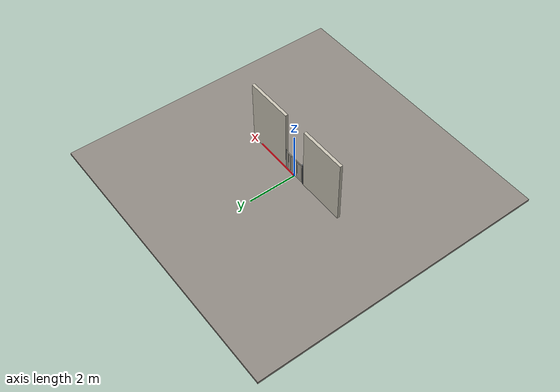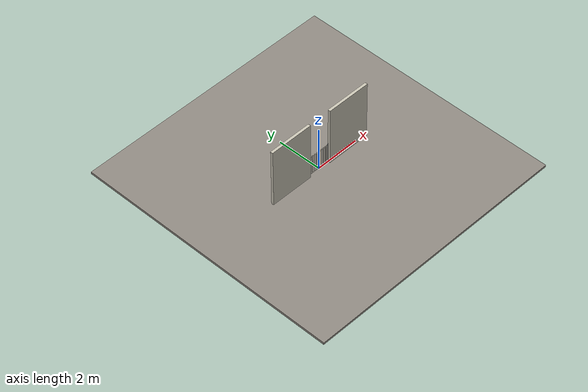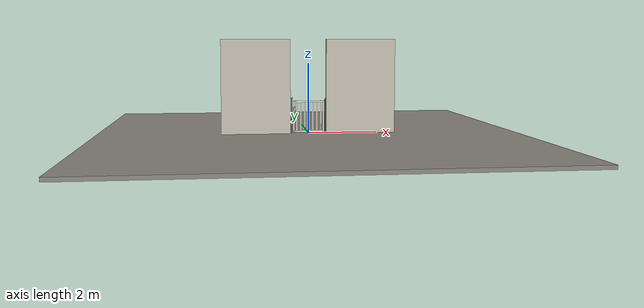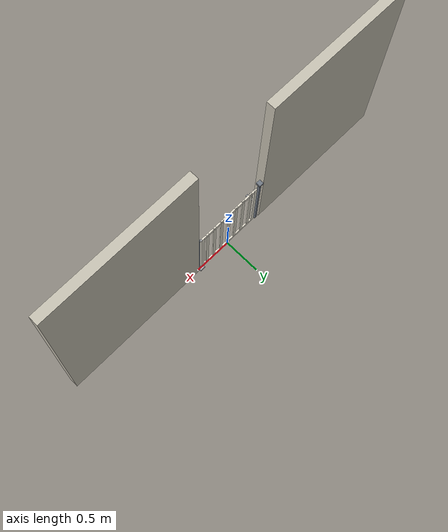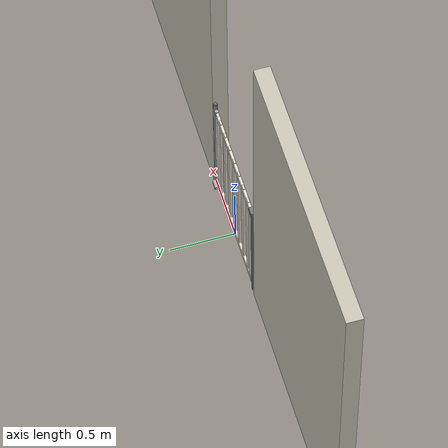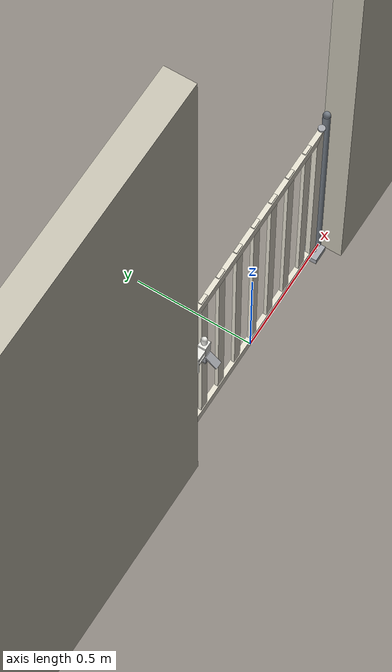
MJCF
<?xml version="1.0" ?>
<mujoco model="db0698_baby_gate_full">
  <compiler angle="radian" meshdir="../../hardware" texturedir="../../textures" autolimits="true" inertiafromgeom="false"/>
  <option timestep="0.002" integrator="implicitfast" cone="elliptic" impratio="10" noslip_iterations="3">
    <flag multiccd="enable"/>
  </option>
  <size memory="16M"/>
  <default>
    <geom condim="4" solref="0.005 1" solimp="0.95 0.99 0.001"/>
    <joint solreflimit="0.005 1" solimplimit="0.95 0.99 0.001"/>
    <tendon solreflimit="0.005 1"/>
    <equality solref="0.002 1"/>
  </default>
  <visual>
    <headlight ambient="0.4 0.4 0.4" diffuse="0.7 0.7 0.7" specular="0.2 0.2 0.2"/>
    <quality shadowsize="4096"/>
    <map znear="0.01" zfar="60"/>
  </visual>
  <asset>
    <material name="mat_floor" rgba="0.55 0.53 0.5 1" specular="0.2" shininess="0.15" reflectance="0"/>
    <material name="mat_wall" rgba="0.78 0.76 0.7 1" specular="0.2" shininess="0.1" reflectance="0"/>
    <material name="mat_leaf" rgba="0.9 0.88 0.82 1" specular="0.23" shininess="0.63" reflectance="0.02"/>
    <material name="mat_hinge" rgba="0.65 0.66 0.68 1" specular="0.74" shininess="0.5" reflectance="0.36"/>
    <material name="mat_op_pvc" rgba="0.92 0.92 0.9 1" specular="0.2" shininess="0.6" reflectance="0"/>
    <material name="mat_keeper" rgba="0.65 0.66 0.68 1" specular="0.74" shininess="0.5" reflectance="0.36"/>
    <material name="mat_frame" rgba="0.45 0.48 0.52 1" specular="0.32" shininess="0.6" reflectance="0.08"/>
    <texture name="skybox" type="skybox" builtin="gradient" rgb1="0.6 0.7 0.85" rgb2="0.9 0.92 0.95" width="256" height="256"/>
  </asset>
  <worldbody>
    <light name="sun" pos="1.5 -2.5 4" dir="-0.3 0.5 -0.8" directional="true" diffuse="0.8 0.8 0.8" specular="0.3 0.3 0.3" castshadow="true"/>
    <light name="fill" pos="-1.5 2.5 3" dir="0.3 -0.5 -0.7" directional="true" diffuse="0.35 0.35 0.4" castshadow="false"/>
    <camera name="robot_view" pos="0 -1.9155 0.985" xyaxes="1 0 0 0 0.26963 0.962964" fovy="52"/>
    <camera name="far_view" pos="0 1.8345 0.985" xyaxes="-1 0 0 0 -0.26963 0.962964" fovy="52"/>
    <camera name="iso" pos="-1.425 -1.6155 1.285" xyaxes="0.741536 -0.670913 0 0.242917 0.268487 0.932151" fovy="46"/>
    <camera name="detail_handle" pos="-0.224 -0.845 1.045" xyaxes="0.97561 0.219512 0 -0.070934 0.315262 0.94635" fovy="38"/>
    <geom name="floor" type="box" size="6 6 0.05" pos="0 0 -0.05" material="mat_floor" group="0" contype="1" conaffinity="1" friction="0.8 0.005 0.0001" density="2400"/>
    <geom name="wall_left" type="box" size="0.984 0.0575 1.35" pos="-1.516 -0.0405 1.35" material="mat_wall" group="0" contype="1" conaffinity="1" friction="0.6 0.005 0.0001" density="800"/>
    <geom name="wall_right" type="box" size="0.999 0.0575 1.35" pos="1.501 -0.0405 1.35" material="mat_wall" group="0" contype="1" conaffinity="1" friction="0.6 0.005 0.0001" density="800"/>
    <geom name="pivot_bottom_socket" type="box" size="0.035 0.035 0.019" pos="0.456 0 0.009" material="mat_hinge" group="1" contype="0" conaffinity="0" density="7850"/>
    <geom name="leaf_pin_housing" type="box" size="0.018 0.016 0.03" pos="-0.404 -0.045 0.715" material="mat_op_pvc" group="1" contype="0" conaffinity="0" density="1800"/>
    <geom name="leaf_pin_bracket" type="box" size="0.028 0.016 0.01" pos="-0.45 -0.045 0.724" material="mat_op_pvc" group="1" contype="0" conaffinity="0" density="1800"/>
    <geom name="leaf_pin_bracket_2" type="box" size="0.028 0.016 0.006" pos="-0.45 -0.045 0.694" material="mat_op_pvc" group="1" contype="0" conaffinity="0" density="1800"/>
    <geom name="leaf_pin_post_plate" type="box" size="0.003 0.022 0.05" pos="-0.475 -0.045 0.71" material="mat_op_pvc" group="1" contype="0" conaffinity="0" density="1800"/>
    <geom name="post_hinge" type="cylinder" size="0.015 0.49" pos="0.487 0 0.49" material="mat_frame" group="0" contype="1" conaffinity="1" friction="0.6 0.005 0.0001" density="800"/>
    <geom name="post_hinge_cap" type="sphere" size="0.015" pos="0.487 0 0.98" material="mat_frame" group="1" contype="0" conaffinity="0" density="800"/>
    <geom name="post_latch" type="box" size="0.015 0.015 0.49" pos="-0.487 0 0.49" material="mat_frame" group="0" contype="1" conaffinity="1" friction="0.6 0.005 0.0001" density="800"/>
    <geom name="post_latch_cap" type="box" size="0.03 0.03 0.02" pos="-0.487 0 1" material="mat_frame" group="1" contype="0" conaffinity="0" density="800"/>
    <geom name="leaf_pin_post_plate_strap_0" type="box" size="0.005 0.0045 0.04" pos="-0.475 -0.019 0.71" material="mat_op_pvc" group="1" contype="0" conaffinity="0" density="7850"/>
    <site name="approach_point" pos="0 -1.5 0" quat="1 0 0 0" size="0.05" rgba="0.2 0.9 0.2 0.5" group="4"/>
    <site name="goal_point" pos="0 1.5 0" quat="1 0 0 0" size="0.05" rgba="0.2 0.9 0.2 0.5" group="4"/>
    <site name="door_plane_center" pos="0 0 0.46" quat="1 0 0 0" size="0.02" rgba="0.2 0.9 0.2 0.5" group="4"/>
    <body name="leaf" pos="0.472 0 0">
      <inertial pos="-0.477022 -0.001858 0.485881" mass="11.280432" quat="0.694241 -0.692753 0.134183 0.141837" diaginertia="0.747811324 0.82275942 1.567455917"/>
      <joint name="leaf_hinge" type="hinge" axis="0 0 -1" pos="-0.016 0 0" limited="true" range="-1.570796 1.570796" damping="1.106642" frictionloss="0.158005" stiffness="5" springref="0" armature="0.02"/>
      <geom name="leaf_slab_col" type="box" size="0.45 0.01 0.45" pos="-0.466 0 0.48" material="mat_leaf" group="3" contype="1" conaffinity="1" rgba="0.8 0.3 0.3 0.25" friction="0.4 0.005 0.0001" density="1"/>
      <geom name="leaf_rail_b" type="box" size="0.45 0.01 0.0225" pos="-0.466 0 0.0525" material="mat_leaf" group="1" contype="0" conaffinity="0" density="1"/>
      <geom name="leaf_rail_t" type="box" size="0.45 0.01 0.0225" pos="-0.466 0 0.9075" material="mat_leaf" group="1" contype="0" conaffinity="0" density="1"/>
      <geom name="leaf_stile_h" type="box" size="0.0225 0.01 0.45" pos="-0.0385 0 0.48" material="mat_leaf" group="1" contype="0" conaffinity="0" density="1"/>
      <geom name="leaf_stile_l" type="box" size="0.0225 0.01 0.45" pos="-0.8935 0 0.48" material="mat_leaf" group="1" contype="0" conaffinity="0" density="1"/>
      <geom name="leaf_picket_0" type="box" size="0.02 0.007 0.4365" pos="-0.118857 0 0.5" material="mat_leaf" group="1" contype="0" conaffinity="0" density="1"/>
      <geom name="leaf_picket_1" type="box" size="0.02 0.007 0.4365" pos="-0.234571 0 0.5" material="mat_leaf" group="1" contype="0" conaffinity="0" density="1"/>
      <geom name="leaf_picket_2" type="box" size="0.02 0.007 0.4365" pos="-0.350286 0 0.5" material="mat_leaf" group="1" contype="0" conaffinity="0" density="1"/>
      <geom name="leaf_picket_3" type="box" size="0.02 0.007 0.4365" pos="-0.466 0 0.5" material="mat_leaf" group="1" contype="0" conaffinity="0" density="1"/>
      <geom name="leaf_picket_4" type="box" size="0.02 0.007 0.4365" pos="-0.581714 0 0.5" material="mat_leaf" group="1" contype="0" conaffinity="0" density="1"/>
      <geom name="leaf_picket_5" type="box" size="0.02 0.007 0.4365" pos="-0.697429 0 0.5" material="mat_leaf" group="1" contype="0" conaffinity="0" density="1"/>
      <geom name="leaf_picket_6" type="box" size="0.02 0.007 0.4365" pos="-0.813143 0 0.5" material="mat_leaf" group="1" contype="0" conaffinity="0" density="1"/>
      <geom name="pivot_bottom" type="cylinder" size="0.014 0.004" pos="-0.016 0 0.025" material="mat_hinge" group="1" contype="0" conaffinity="0" density="7850"/>
      <geom name="pivot_top" type="cylinder" size="0.014 0.004" pos="-0.016 0 0.934" material="mat_hinge" group="1" contype="0" conaffinity="0" density="7850"/>
      <geom name="leaf_cup_n" type="box" size="0.016 0.004 0.02" pos="-0.876 -0.057 0.655" material="mat_keeper" group="0" contype="1" conaffinity="1" friction="0.6 0.005 0.0001" density="7800"/>
      <geom name="leaf_cup_p" type="box" size="0.016 0.004 0.02" pos="-0.876 -0.033 0.655" material="mat_keeper" group="0" contype="1" conaffinity="1" friction="0.6 0.005 0.0001" density="7800"/>
      <geom name="leaf_cup_b" type="box" size="0.016 0.016 0.004" pos="-0.876 -0.045 0.631" material="mat_keeper" group="0" contype="1" conaffinity="1" friction="0.6 0.005 0.0001" density="7800"/>
      <geom name="leaf_cup_bracket" type="box" size="0.016 0.0095 0.004" pos="-0.876 -0.0195 0.655" material="mat_keeper" group="1" contype="0" conaffinity="0" density="7800"/>
      <geom name="leaf_cup_ramp" type="box" size="0.016 0.0301 0.004" pos="-0.876 -0.080844 0.652012" quat="0.355381 -0.934722 0 0" material="mat_keeper" group="0" contype="1" conaffinity="1" friction="0.12 0.005 0.0001" density="7800"/>
      <site name="leaf_edge_mid" pos="-0.916 0 0.45" quat="1 0 0 0" size="0.02" rgba="0.2 0.9 0.2 0.5" group="4"/>
    </body>
    <body name="leaf_pin" pos="-0.404 -0.045 0.7">
      <inertial pos="0 0 0.037519" mass="0.228168" quat="0.707107 0 0.707107 0" diaginertia="0.000010167 0.000346413 0.000346413"/>
      <joint name="leaf_pin_slide" type="slide" axis="0 0 1" limited="true" range="0 0.05" damping="9.526824" frictionloss="0.25" stiffness="60" springref="-0.016667" armature="0.15"/>
      <geom name="leaf_pin_geom" type="capsule" size="0.006 0.0525" pos="0 0 0.0025" material="mat_op_pvc" group="0" contype="1" conaffinity="1" friction="0.6 0.005 0.0001" density="7850"/>
      <geom name="leaf_pin_knob" type="capsule" size="0.012 0.01" pos="0 0 0.065" material="mat_op_pvc" group="0" contype="1" conaffinity="1" friction="0.6 0.005 0.0001" density="7850"/>
      <site name="leaf_grip_pin" pos="0 0 0.065" quat="1 0 0 0" size="0.012" rgba="0.2 0.9 0.2 0.5" group="4"/>
    </body>
  </worldbody>
  <sensor>
    <jointpos name="leaf_hinge_pos" joint="leaf_hinge"/>
    <jointvel name="leaf_hinge_vel" joint="leaf_hinge"/>
    <jointpos name="leaf_pin_slide_pos" joint="leaf_pin_slide"/>
    <jointvel name="leaf_pin_slide_vel" joint="leaf_pin_slide"/>
  </sensor>
</mujoco>
